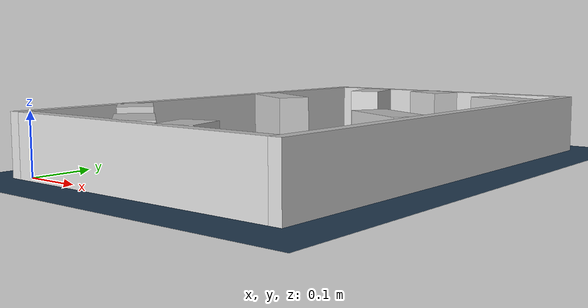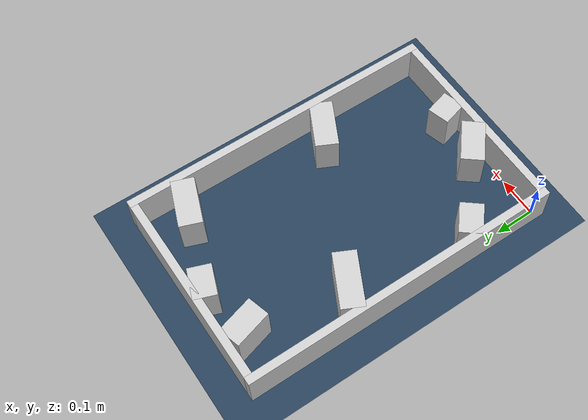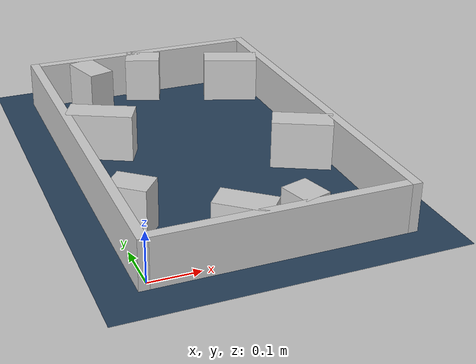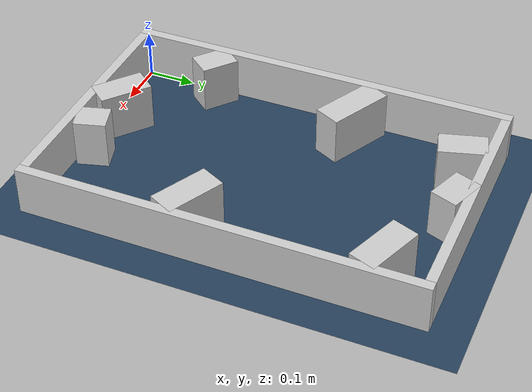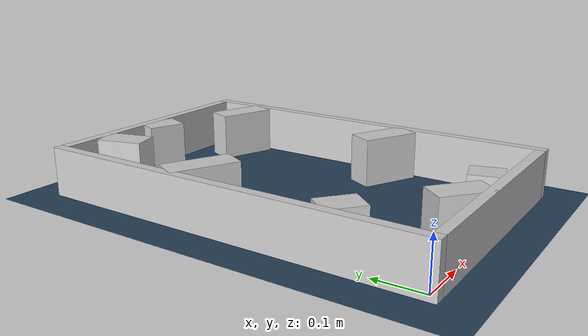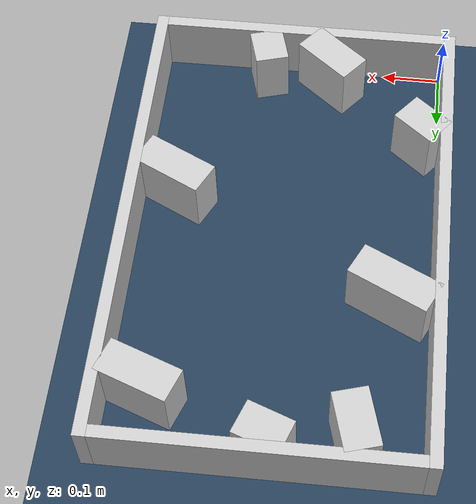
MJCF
<?xml version="1.0" ?>
<mujoco model="generated_real_template">
  <compiler angle="degree"/>
  <option timestep="0.002" integrator="implicitfast" iterations="100" cone="elliptic"/>
  <default>
    <geom density="1"/>
  </default>
  <asset>
    <texture builtin="gradient" height="3072" rgb1="0.3 0.5 0.7" rgb2="0 0 0" type="skybox" width="512"/>
    <texture builtin="checker" height="300" mark="edge" markrgb="0.8 0.8 0.8" name="groundplane" rgb1="0.2 0.3 0.4" rgb2="0.1 0.2 0.3" type="2d" width="300"/>
    <material name="groundplane" reflectance="0.2" texrepeat="5 5" texture="groundplane" texuniform="true"/>
  </asset>
  <worldbody>
    <light dir="0 0 -1" directional="true" pos="0 0 1.5"/>
    <geom name="floor" type="plane" condim="4" friction="0.5 0.005 0.001" material="groundplane" size="0 0 0.05"/>
    <body name="walls">
      <geom name="wall_boundary_left" type="box" condim="4" friction="1.0 0.005 0.0001" rgba="0.8 0.8 0.8 1" pos="-0.010000 0.387500 0.050000" euler="0 0 0.000000" size="0.010000 0.407500 0.050000"/>
      <geom name="wall_boundary_right" type="box" condim="4" friction="1.0 0.005 0.0001" rgba="0.8 0.8 0.8 1" pos="0.500000 0.387500 0.050000" euler="0 0 0.000000" size="0.010000 0.407500 0.050000"/>
      <geom name="wall_boundary_bottom" type="box" condim="4" friction="1.0 0.005 0.0001" rgba="0.8 0.8 0.8 1" pos="0.245000 -0.010000 0.050000" euler="0 0 0.000000" size="0.245000 0.010000 0.050000"/>
      <geom name="wall_boundary_top" type="box" condim="4" friction="1.0 0.005 0.0001" rgba="0.8 0.8 0.8 1" pos="0.245000 0.785000 0.050000" euler="0 0 0.000000" size="0.245000 0.010000 0.050000"/>
      <geom name="wall_inner_1_1" type="box" condim="4" friction="1.0 0.005 0.0001" rgba="0.8 0.8 0.8 1" pos="0.305190 0.031398 0.050000" euler="0 0 105.910449" size="0.032649 0.028500 0.050000"/>
      <geom name="wall_inner_1_2" type="box" condim="4" friction="1.0 0.005 0.0001" rgba="0.8 0.8 0.8 1" pos="0.106351 0.728943 0.050000" euler="0 0 105.910449" size="0.047892 0.028500 0.050000"/>
      <geom name="wall_inner_2_1" type="box" condim="4" friction="1.0 0.005 0.0001" rgba="0.8 0.8 0.8 1" pos="0.238905 0.754532 0.050000" euler="0 0 -20.606797" size="0.039183 0.028500 0.050000"/>
      <geom name="wall_inner_2_2" type="box" condim="4" friction="1.0 0.005 0.0001" rgba="0.8 0.8 0.8 1" pos="0.432632 0.681689 0.050000" euler="0 0 -20.606797" size="0.061290 0.028500 0.050000"/>
      <geom name="wall_inner_3_1" type="box" condim="4" friction="1.0 0.005 0.0001" rgba="0.8 0.8 0.8 1" pos="0.062264 0.486785 0.050000" euler="0 0 -26.484152" size="0.069564 0.028500 0.050000"/>
      <geom name="wall_inner_3_2" type="box" condim="4" friction="1.0 0.005 0.0001" rgba="0.8 0.8 0.8 1" pos="0.434381 0.301383 0.050000" euler="0 0 -26.484152" size="0.062140 0.028500 0.050000"/>
      <geom name="wall_inner_4_1" type="box" condim="4" friction="1.0 0.005 0.0001" rgba="0.8 0.8 0.8 1" pos="0.193331 0.036368 0.050000" euler="0 0 140.640531" size="0.054135 0.028500 0.050000"/>
      <geom name="wall_inner_4_2" type="box" condim="4" friction="1.0 0.005 0.0001" rgba="0.8 0.8 0.8 1" pos="0.030310 0.170082 0.050000" euler="0 0 140.640531" size="0.039202 0.028500 0.050000"/>
    </body>
  </worldbody>
</mujoco>
